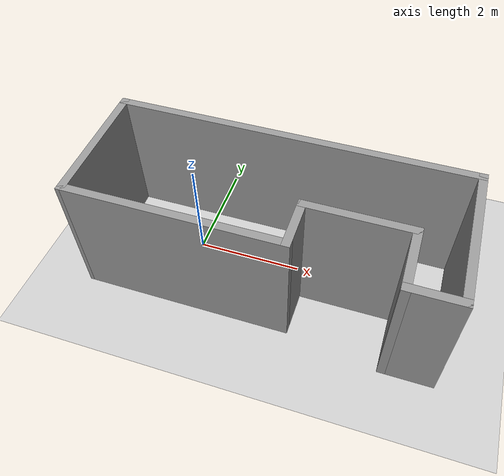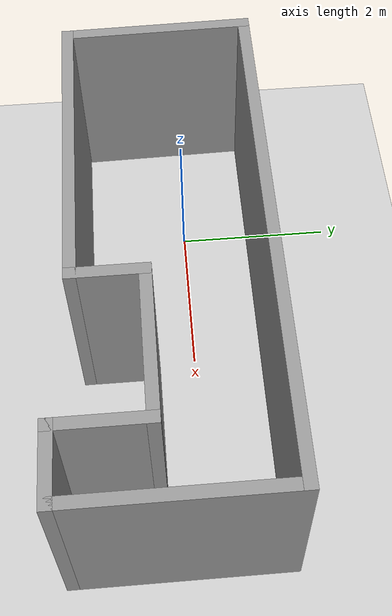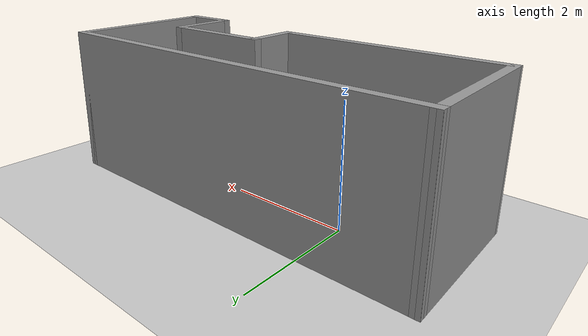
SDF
<sdf version="1.7">
 <world name="default">
  <light name="sun" type="directional">
   <pose>0 0 10 0 -0 0</pose>
   <diffuse>0.8 0.8 0.8 1</diffuse>
   <specular>0.2 0.2 0.2 1</specular>
   <attenuation>
    <range>1000</range>
    <constant>0.9</constant>
    <linear>0.01</linear>
    <quadratic>0.001</quadratic>
   </attenuation>
   <direction>-0.5 0.1 -0.9</direction>
   <spot><inner_angle>0</inner_angle><outer_angle>0</outer_angle><falloff>0</falloff></spot>
  </light>
  <model name="ground_plane">
   <static>1</static>
   <link name="link">
    <collision name="collision">
     <geometry><plane><normal>0 0 1</normal><size>100 100</size></plane></geometry>
     <surface><friction><ode><mu>100</mu><mu2>50</mu2></ode></friction></surface>
    </collision>
    <visual name="visual">
     <cast_shadows>0</cast_shadows>
     <geometry><plane><normal>0 0 1</normal><size>100 100</size></plane></geometry>
     <material>
      <script><uri>file://media/materials/scripts/gazebo.material</uri><name>Gazebo/Grey</name></script>
     </material>
    </visual>
   </link>
  </model>
  <gravity>0 0 -9.8</gravity>
  <magnetic_field>6e-06 2.3e-05 -4.2e-05</magnetic_field>
  <atmosphere type="adiabatic"/>
  <physics type="ode">
   <max_step_size>0.001</max_step_size>
   <real_time_factor>1</real_time_factor>
   <real_time_update_rate>1000</real_time_update_rate>
  </physics>
  <scene><ambient>0.4 0.4 0.4 1</ambient><background>0.7 0.7 0.7 1</background><shadows>1</shadows></scene>
  <audio><device>default</device></audio>
  <spherical_coordinates>
   <surface_model>EARTH_WGS84</surface_model>
   <latitude_deg>0</latitude_deg>
   <longitude_deg>0</longitude_deg>
   <elevation>0</elevation>
   <heading_deg>0</heading_deg>
  </spherical_coordinates>
  <model name="model2"><static>0</static><pose>4.93244 -1.35652 0 0 -0 0</pose></model>
  <model name="TestTest">
   <pose>1.56014 0.387072 0 0 -0 0</pose>
   <link name="Wall_0">
    <collision name="Wall_0_Collision">
     <geometry><box><size>6.75 0.15 2.5</size></box></geometry>
     <pose>0 0 1.25 0 -0 0</pose>
    </collision>
    <visual name="Wall_0_Visual">
     <pose>0 0 1.25 0 -0 0</pose>
     <geometry><box><size>6.75 0.15 2.5</size></box></geometry>
     <material>
      <script><uri>file://media/materials/scripts/gazebo.material</uri><name>Gazebo/Grey</name></script>
      <ambient>1 1 1 1</ambient>
     </material>
     <meta><layer>0</layer></meta>
    </visual>
    <pose>0.000789 0.5775 0 0 -0 0</pose>
   </link>
   <link name="Wall_1">
    <collision name="Wall_1_Collision">
     <geometry><box><size>2.75 0.15 2.5</size></box></geometry>
     <pose>0 0 1.25 0 -0 0</pose>
    </collision>
    <visual name="Wall_1_Visual">
     <pose>0 0 1.25 0 -0 0</pose>
     <geometry><box><size>2.75 0.15 2.5</size></box></geometry>
     <material>
      <script><uri>file://media/materials/scripts/gazebo.material</uri><name>Gazebo/Grey</name></script>
      <ambient>1 1 1 1</ambient>
     </material>
     <meta><layer>0</layer></meta>
    </visual>
    <pose>3.30079 -0.7225 0 0 -0 -1.5708</pose>
   </link>
   <link name="Wall_2">
    <collision name="Wall_2_Collision">
     <geometry><box><size>1 0.15 2.5</size></box></geometry>
     <pose>0 0 1.25 0 -0 0</pose>
    </collision>
    <visual name="Wall_2_Visual">
     <pose>0 0 1.25 0 -0 0</pose>
     <geometry><box><size>1 0.15 2.5</size></box></geometry>
     <material>
      <script><uri>file://media/materials/scripts/gazebo.material</uri><name>Gazebo/Grey</name></script>
      <ambient>1 1 1 1</ambient>
     </material>
     <meta><layer>0</layer></meta>
    </visual>
    <pose>2.87579 -2.0225 0 0 -0 3.14159</pose>
   </link>
   <link name="Wall_3">
    <collision name="Wall_3_Collision">
     <geometry><box><size>1.25 0.15 2.5</size></box></geometry>
     <pose>0 0 1.25 0 -0 0</pose>
    </collision>
    <visual name="Wall_3_Visual">
     <pose>0 0 1.25 0 -0 0</pose>
     <geometry><box><size>1.25 0.15 2.5</size></box></geometry>
     <material>
      <script><uri>file://media/materials/scripts/gazebo.material</uri><name>Gazebo/Grey</name></script>
      <ambient>1 1 1 1</ambient>
     </material>
     <meta><layer>0</layer></meta>
    </visual>
    <pose>2.45079 -1.4725 0 0 -0 1.5708</pose>
   </link>
   <link name="Wall_4">
    <collision name="Wall_4_Collision">
     <geometry><box><size>2 0.15 2.5</size></box></geometry>
     <pose>0 0 1.25 0 -0 0</pose>
    </collision>
    <visual name="Wall_4_Visual">
     <pose>0 0 1.25 0 -0 0</pose>
     <geometry><box><size>2 0.15 2.5</size></box></geometry>
     <material>
      <script><uri>file://media/materials/scripts/gazebo.material</uri><name>Gazebo/Grey</name></script>
      <ambient>1 1 1 1</ambient>
     </material>
     <meta><layer>0</layer></meta>
    </visual>
    <pose>1.52579 -0.9225 0 0 -0 3.14159</pose>
   </link>
   <link name="Wall_5">
    <collision name="Wall_5_Collision">
     <geometry><box><size>1 0.15 2.5</size></box></geometry>
     <pose>0 0 1.25 0 -0 0</pose>
    </collision>
    <visual name="Wall_5_Visual">
     <pose>0 0 1.25 0 -0 0</pose>
     <geometry><box><size>1 0.15 2.5</size></box></geometry>
     <material>
      <script><uri>file://media/materials/scripts/gazebo.material</uri><name>Gazebo/Grey</name></script>
      <ambient>1 1 1 1</ambient>
     </material>
     <meta><layer>0</layer></meta>
    </visual>
    <pose>0.600789 -1.3475 0 0 -0 -1.5708</pose>
   </link>
   <link name="Wall_6">
    <collision name="Wall_6_Collision">
     <geometry><box><size>4 0.15 2.5</size></box></geometry>
     <pose>0 0 1.25 0 -0 0</pose>
    </collision>
    <visual name="Wall_6_Visual">
     <pose>0 0 1.25 0 -0 0</pose>
     <geometry><box><size>4 0.15 2.5</size></box></geometry>
     <material>
      <script><uri>file://media/materials/scripts/gazebo.material</uri><name>Gazebo/Grey</name></script>
      <ambient>1 1 1 1</ambient>
     </material>
     <meta><layer>0</layer></meta>
    </visual>
    <pose>-1.32421 -1.7725 0 0 -0 3.14159</pose>
   </link>
   <link name="Wall_7">
    <collision name="Wall_7_Collision">
     <geometry><box><size>2.50053 0.15 2.5</size></box></geometry>
     <pose>0 0 1.25 0 -0 0</pose>
    </collision>
    <visual name="Wall_7_Visual">
     <pose>0 0 1.25 0 -0 0</pose>
     <geometry><box><size>2.50053 0.15 2.5</size></box></geometry>
     <material>
      <script><uri>file://media/materials/scripts/gazebo.material</uri><name>Gazebo/Grey</name></script>
      <ambient>1 1 1 1</ambient>
     </material>
     <meta><layer>0</layer></meta>
    </visual>
    <pose>-3.27421 -0.5975 0 0 -0 1.59207</pose>
   </link>
   <static>1</static>
  </model>
 </world>
</sdf>
